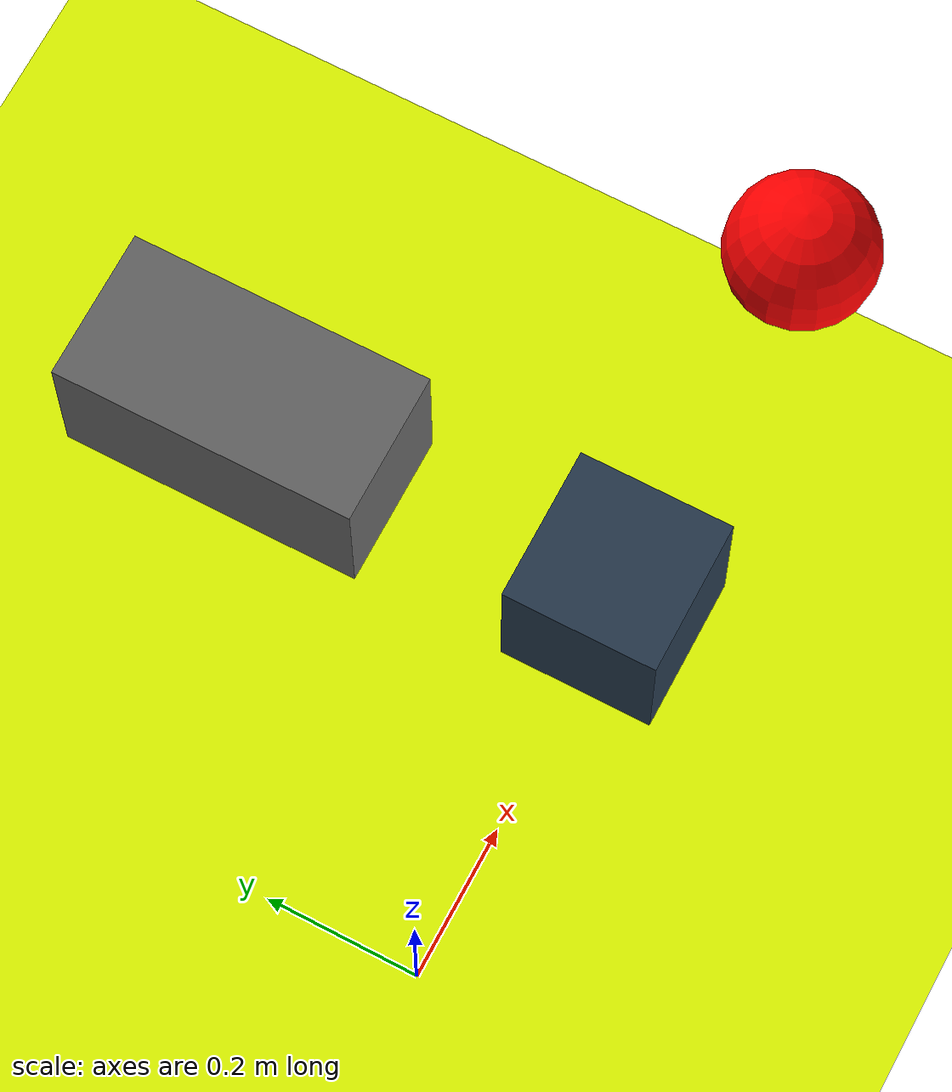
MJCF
<mujoco>
   <asset>
      <texture file="../textures/checkerboard.png" type="cube" name="checker" />
      <texture file="../textures/sphere.png" type="2d" name="checker-sph" />

      <texture name="builtin_checker" builtin="checker" rgb1=".2 .3 .4" rgb2=".1 0.15 0.2" width="200" height="200"/>
      <texture name="builtin_gradient" builtin="gradient" rgb1=".1 .1 .1" rgb2=".7 0.7 0.7" width="200" height="200"/>
      <texture name="builtin_flat" builtin="flat" rgb1="1 0 0" rgb2="1 0 0"  width="200" height="200"/>

      <material name="checker_mat" reflectance="0.9" texrepeat="2 2" texture="builtin_checker" texuniform="true" />
      <material name="gradient_mat" reflectance="1" texrepeat="1 1" texture="builtin_gradient" texuniform="true"/>
      <material name="flat_mat" reflectance="1" texrepeat="1 1" texture="builtin_flat" texuniform="true"/>
   </asset>

   <worldbody>
      <light diffuse=".9 .9 .9" pos="0 0 3" dir="0 0 -1"/>
      <geom type="plane" size="1 1 0.1" rgba=".9 1 0 1"/>
     <body pos="0.5 0 0.1">
         <joint type="free"/>
         <geom type="box" size=".1 .1 .1" material="checker_mat" />
      </body>
      <body pos="0.5 0.5 0.1">
         <joint type="free"/>
         <geom type="box" size=".1 .2 .1" material="gradient_mat"/>
      </body>
    <body pos="1 0 0.1">
         <joint type="free"/>
         <geom type="sphere" size=".1 .1 .1" material="flat_mat" />
      </body>
        <camera axisangle="0 1 0 0" fovy="45" name="camera_a" pos="1 0 2"></camera>
   </worldbody>
</mujoco>
